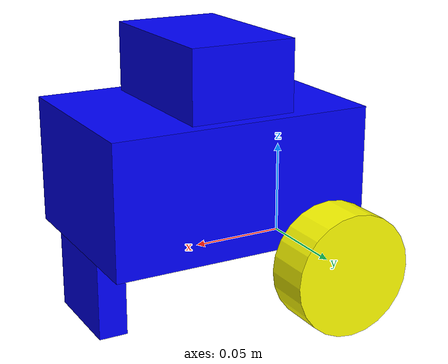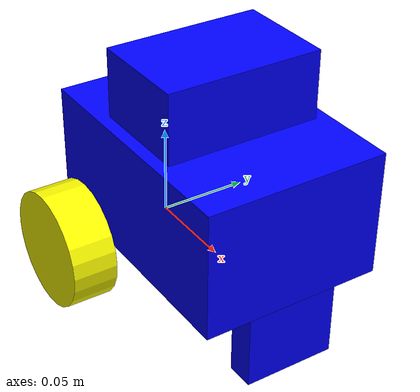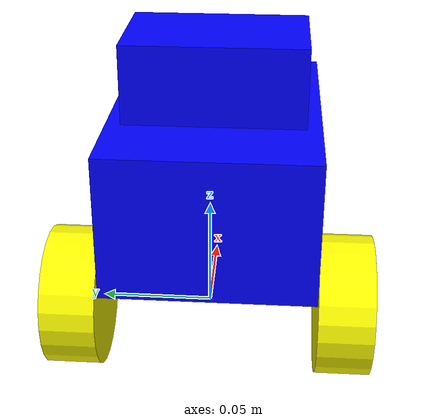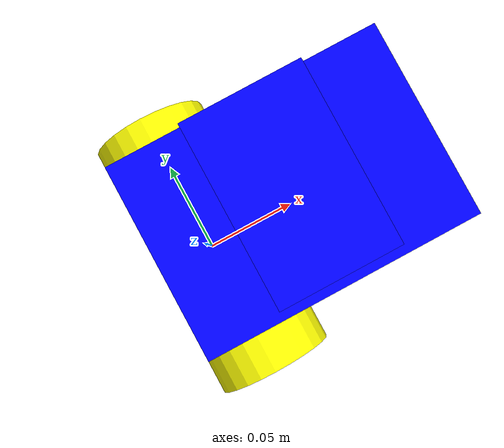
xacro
<?xml version="1.0"?>
<robot xmlns:xacro="http://www.ros.org/wiki/xacro">

    <xacro:include filename="inertial_macros.xacro"/>

   <material name="grey">
        <color rgba="0.2 0.2 0.2 1"/>
    </material>

    <material name="white">
        <color rgba="1 1 1 1"/>
    </material>

    <material name="orange">
        <color rgba="1 0.3 0.1 1"/>
    </material>

    <material name="blue">
        <color rgba="0 0 1 1"/>
    </material>

    <material name="yellow">
        <color rgba="1 1 0 1"/>
    </material>

    <material name="black">
        <color rgba="0 0 0 1"/>
    </material>

    <material name="red">
        <color rgba="1 0 0 1"/>
    </material>

    <!-- BASE LINK -->

    <link name="base_link">

    </link>

    <!-- BASE FOOTPRINT LINK -->

    <joint name="base_footprint_joint" type="fixed">
        <parent link="base_link"/>
        <child link="base_footprint"/>
        <origin xyz="0 0 0" rpy="0 0 0"/>
    </joint>

    <link name="base_footprint">
    </link>

    <!-- CHASSIS LINK -->

    <joint name="chassis_joint" type="fixed">
        <parent link="base_link"/>
        <child link="chassis"/>
        <origin xyz="-0.02115 0 0.01125"/>
    </joint>

    <link name="chassis">
        <!-- Main chassis box -->
        <visual>
            <origin xyz="0.0695 0 0.03425"/>
            <geometry>
                <box size="0.139 0.099 0.0685"/>
            </geometry>
            <material name="blue"/>
        </visual>
        <collision>
            <origin xyz="0.0695 0 0.03425"/>
            <geometry>
                <box size="0.139 0.099 0.0685"/>
            </geometry>
        </collision>
        <!-- Raspberry pi box-->
        <visual>
            <origin xyz="0.067 0 0.0871"/>
            <geometry>
                <box size="0.056 0.085 0.0372"/>
            </geometry>
            <material name="blue"/>
        </visual>
        <collision>
            <origin xyz="0.067 0 0.0871"/>
            <geometry>
                <box size="0.056 0.085 0.0372"/>
            </geometry>
        </collision>
        <!-- Caster wheel box -->
        <visual>
            <origin xyz="0.1315 0 -0.02"/>
            <geometry>
                <box size="0.015 0.05 0.04"/>
            </geometry>
            <material name="blue"/>
        </visual>
        <collision>
            <origin xyz="0.1315 0 -0.02"/>
            <geometry>
                <box size="0.015 0.05 0.04"/>
            </geometry>
        </collision>
        <xacro:inertial_box mass="0.95968" x="0.139" y="0.099" z="0.0685">
            <origin xyz="0.0695 0 0.03425" rpy="0 0 0"/>
        </xacro:inertial_box>
    </link>

    <gazebo reference="chassis">
        <material>Gazebo/Blue</material>
    </gazebo>

    <!-- LEFT WHEEL LINK-->

    <joint name="left_wheel_joint" type="continuous">
        <parent link="base_link"/>
        <child link="left_wheel"/>
        <origin xyz="0 0.062 0" rpy="-${pi/2} 0 0"/>
        <axis xyz="0 0 1"/>
    </joint>

    <link name="left_wheel">
        <visual>
            <geometry>
                <cylinder radius="0.0325" length="0.025"/>
            </geometry>
            <material name="yellow"/>
        </visual>
        <collision>
            <geometry>
                <cylinder radius="0.0325" length="0.025"/>
            </geometry>
        </collision>
        <xacro:inertial_cylinder mass="0.0257" length="0.025" radius="0.0325">
            <origin xyz="0 0 0" rpy="0 0 0"/>
        </xacro:inertial_cylinder>
    </link>

    <gazebo reference="left_wheel">
        <material>Gazebo/Yellow</material>
    </gazebo>

    <!-- RIGHT WHEEL LINK-->

    <joint name="right_wheel_joint" type="continuous">
        <parent link="base_link"/>
        <child link="right_wheel"/>
        <origin xyz="0 -0.062 0" rpy="${pi/2} 0 0"/>
        <axis xyz="0 0 -1"/>
    </joint>

    <link name="right_wheel">
        <visual>
            <geometry>
                <cylinder radius="0.0325" length="0.025"/>
            </geometry>
            <material name="yellow"/>
        </visual>
        <collision>
            <geometry>
                <cylinder radius="0.0325" length="0.025"/>
            </geometry>
        </collision>
        <xacro:inertial_cylinder mass="0.0257" length="0.025" radius="0.0325">
            <origin xyz="0 0 0" rpy="0 0 0"/>
        </xacro:inertial_cylinder>
    </link>

    <gazebo reference="right_wheel">
        <material>Gazebo/Yellow</material>
    </gazebo>

    <!-- CASTER WHEEL LINK -->

    <joint name="caster_wheel_joint" type="fixed">
        <parent link="chassis"/>
        <child link="caster_wheel"/>
        <origin xyz="0.1315 0 -0.03625"/>
    </joint>

    <link name="caster_wheel">
        <visual>
            <geometry>
                <sphere radius="0.0075"/>
            </geometry>
            <material name="white"/>
        </visual>
        <collision>
            <geometry>
                <sphere radius="0.0075"/>
            </geometry>
        </collision>
        <xacro:inertial_sphere mass="0.01382" radius="0.0075">
            <origin xyz="0 0 0" rpy="0 0 0"/>
        </xacro:inertial_sphere>
    </link>

    <gazebo reference="caster_wheel">
        <material>Gazebo/White</material>
        <mu1 value="0.001"/>
        <mu2 value="0.001"/>
    </gazebo>

</robot>
